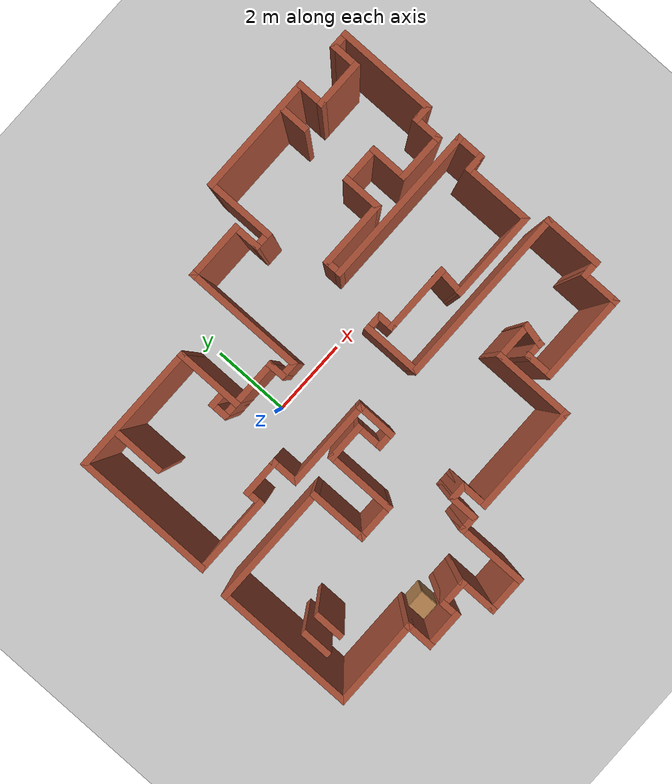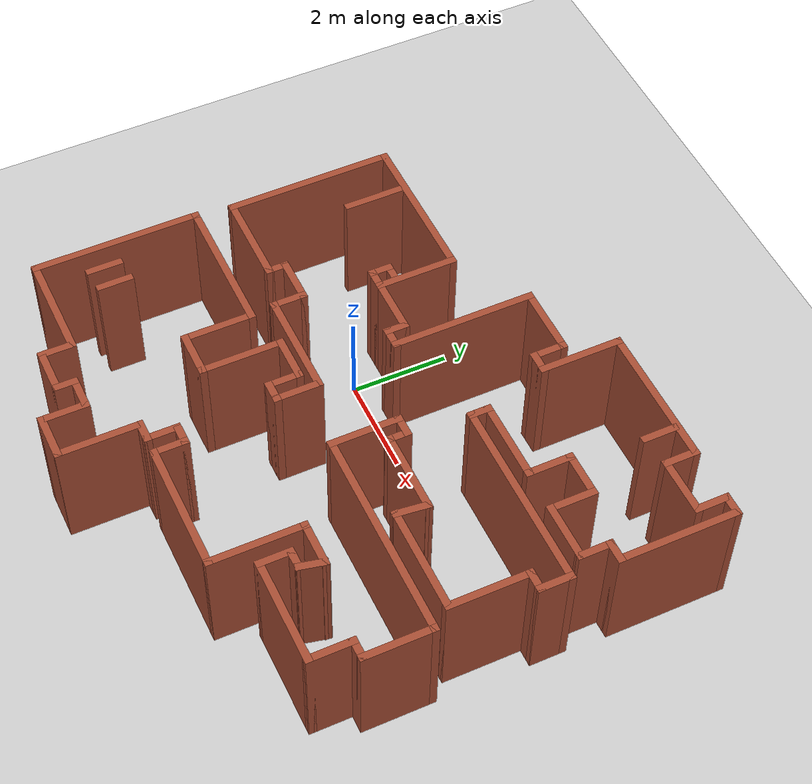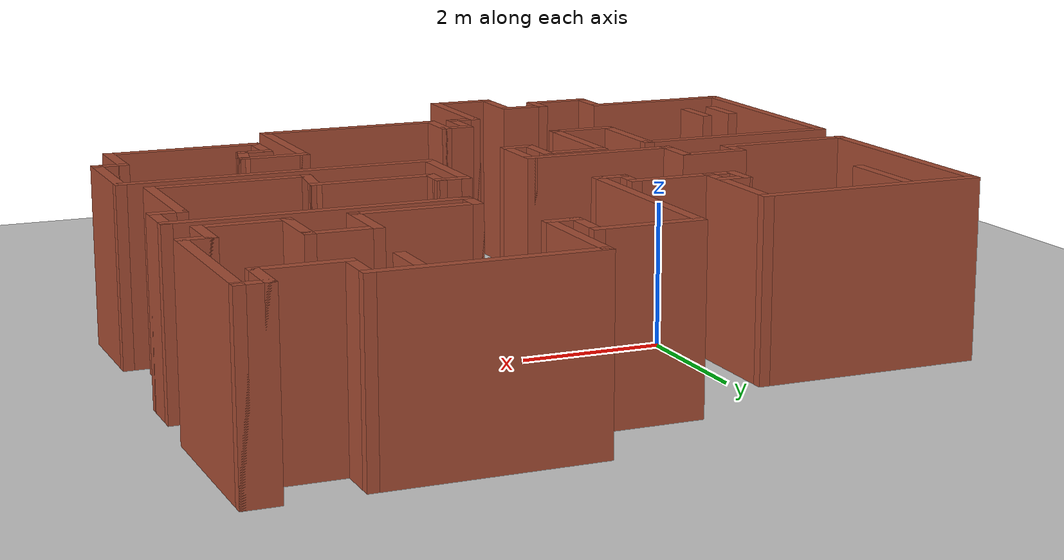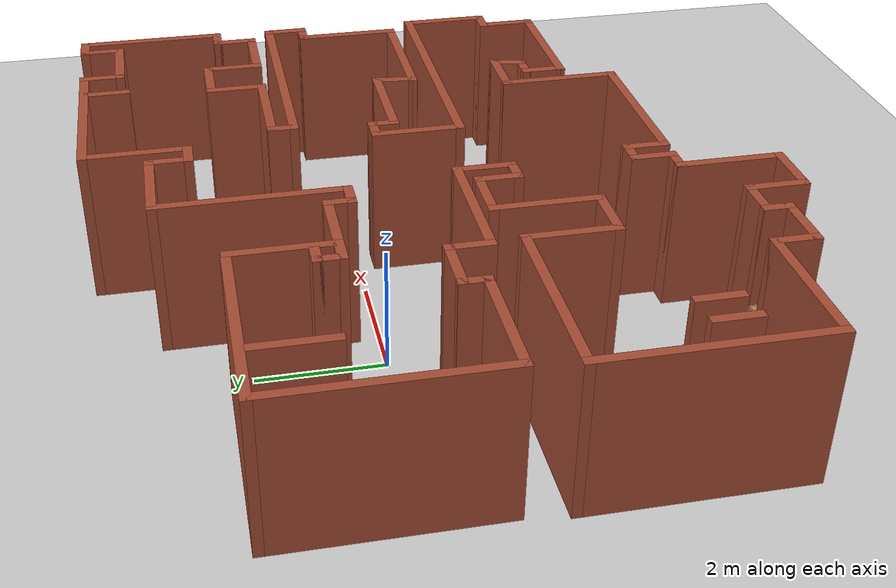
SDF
<sdf version="1.6">
 <world name="default">
  <model name="ground_plane">
   <static>1</static>
   <link name="link">
    <collision name="collision">
     <geometry><plane><normal>0 0 1</normal><size>100 100</size></plane></geometry>
     <surface>
      <contact><collide_bitmask>65535</collide_bitmask></contact>
      <friction><ode><mu>100</mu><mu2>50</mu2></ode></friction>
     </surface>
    </collision>
    <visual name="visual">
     <cast_shadows>0</cast_shadows>
     <geometry><plane><normal>0 0 1</normal><size>100 100</size></plane></geometry>
     <material>
      <script><uri>file://media/materials/scripts/gazebo.material</uri><name>Gazebo/Grey</name></script>
     </material>
    </visual>
   </link>
  </model>
  <model name="map_85">
   <pose>1.75927 -1.02662 0 0 -0 0</pose>
   <link name="Wall_0">
    <collision name="Wall_0_Collision">
     <geometry><box><size>3.25 0.15 2.5</size></box></geometry>
     <pose>0 0 1.25 0 -0 0</pose>
    </collision>
    <visual name="Wall_0_Visual">
     <pose>0 0 1.25 0 -0 0</pose>
     <geometry><box><size>3.25 0.15 2.5</size></box></geometry>
     <material>
      <script><uri>file://media/materials/scripts/gazebo.material</uri><name>Gazebo/Bricks</name></script>
      <ambient>1 1 1 1</ambient>
     </material>
     <meta><layer>0</layer></meta>
    </visual>
    <pose>-3.675 3.3 0 0 -0 3.14159</pose>
   </link>
   <link name="Wall_1">
    <collision name="Wall_1_Collision">
     <geometry><box><size>3.5 0.15 2.5</size></box></geometry>
     <pose>0 0 1.25 0 -0 0</pose>
    </collision>
    <visual name="Wall_1_Visual">
     <pose>0 0 1.25 0 -0 0</pose>
     <geometry><box><size>3.5 0.15 2.5</size></box></geometry>
     <material>
      <script><uri>file://media/materials/scripts/gazebo.material</uri><name>Gazebo/Bricks</name></script>
      <ambient>1 1 1 1</ambient>
     </material>
     <meta><layer>0</layer></meta>
    </visual>
    <pose>-5.225 1.625 0 0 -0 -1.5708</pose>
   </link>
   <link name="Wall_10">
    <collision name="Wall_10_Collision">
     <geometry><box><size>1 0.15 2.5</size></box></geometry>
     <pose>0 0 1.25 0 -0 0</pose>
    </collision>
    <visual name="Wall_10_Visual">
     <pose>0 0 1.25 0 -0 0</pose>
     <geometry><box><size>1 0.15 2.5</size></box></geometry>
     <material>
      <script><uri>file://media/materials/scripts/gazebo.material</uri><name>Gazebo/Bricks</name></script>
      <ambient>1 1 1 1</ambient>
     </material>
     <meta><layer>0</layer></meta>
    </visual>
    <pose>-1.2 -0.55 0 0 -0 3.14159</pose>
   </link>
   <link name="Wall_100">
    <collision name="Wall_100_Collision">
     <geometry><box><size>2.75 0.15 2.5</size></box></geometry>
     <pose>0 0 1.25 0 -0 0</pose>
    </collision>
    <visual name="Wall_100_Visual">
     <pose>0 0 1.25 0 -0 0</pose>
     <geometry><box><size>2.75 0.15 2.5</size></box></geometry>
     <material>
      <script><uri>file://media/materials/scripts/gazebo.material</uri><name>Gazebo/Bricks</name></script>
      <ambient>1 1 1 1</ambient>
     </material>
     <meta><layer>0</layer></meta>
    </visual>
    <pose>1.075 -3.65 0 0 -0 0</pose>
   </link>
   <link name="Wall_103">
    <collision name="Wall_103_Collision">
     <geometry><box><size>2 0.15 2.5</size></box></geometry>
     <pose>0 0 1.25 0 -0 0</pose>
    </collision>
    <visual name="Wall_103_Visual">
     <pose>0 0 1.25 0 -0 0</pose>
     <geometry><box><size>2 0.15 2.5</size></box></geometry>
     <material>
      <script><uri>file://media/materials/scripts/gazebo.material</uri><name>Gazebo/Bricks</name></script>
      <ambient>1 1 1 1</ambient>
     </material>
     <meta><layer>0</layer></meta>
    </visual>
    <pose>2.375 -2.725 0 0 -0 1.5708</pose>
   </link>
   <link name="Wall_105">
    <collision name="Wall_105_Collision">
     <geometry><box><size>1 0.15 2.5</size></box></geometry>
     <pose>0 0 1.25 0 -0 0</pose>
    </collision>
    <visual name="Wall_105_Visual">
     <pose>0 0 1.25 0 -0 0</pose>
     <geometry><box><size>1 0.15 2.5</size></box></geometry>
     <material>
      <script><uri>file://media/materials/scripts/gazebo.material</uri><name>Gazebo/Bricks</name></script>
      <ambient>1 1 1 1</ambient>
     </material>
     <meta><layer>0</layer></meta>
    </visual>
    <pose>2.8 -1.8 0 0 -0 0</pose>
   </link>
   <link name="Wall_106">
    <collision name="Wall_106_Collision">
     <geometry><box><size>0.610977 0.15 2.5</size></box></geometry>
     <pose>0 0 1.25 0 -0 0</pose>
    </collision>
    <visual name="Wall_106_Visual">
     <pose>0 0 1.25 0 -0 0</pose>
     <geometry><box><size>0.610977 0.15 2.5</size></box></geometry>
     <material>
      <script><uri>file://media/materials/scripts/gazebo.material</uri><name>Gazebo/Bricks</name></script>
      <ambient>1 1 1 1</ambient>
     </material>
     <meta><layer>0</layer></meta>
    </visual>
    <pose>3.175 -2.025 0 0 -0 -1.78947</pose>
   </link>
   <link name="Wall_108">
    <collision name="Wall_108_Collision">
     <geometry><box><size>0.75 0.15 2.5</size></box></geometry>
     <pose>0 0 1.25 0 -0 0</pose>
    </collision>
    <visual name="Wall_108_Visual">
     <pose>0 0 1.25 0 -0 0</pose>
     <geometry><box><size>0.75 0.15 2.5</size></box></geometry>
     <material>
      <script><uri>file://media/materials/scripts/gazebo.material</uri><name>Gazebo/Bricks</name></script>
      <ambient>1 1 1 1</ambient>
     </material>
     <meta><layer>0</layer></meta>
    </visual>
    <pose>3.2413 4.87358 0 0 -0 -1.5708</pose>
   </link>
   <link name="Wall_11">
    <collision name="Wall_11_Collision">
     <geometry><box><size>1.75 0.15 2.5</size></box></geometry>
     <pose>0 0 1.25 0 -0 0</pose>
    </collision>
    <visual name="Wall_11_Visual">
     <pose>0 0 1.25 0 -0 0</pose>
     <geometry><box><size>1.75 0.15 2.5</size></box></geometry>
     <material>
      <script><uri>file://media/materials/scripts/gazebo.material</uri><name>Gazebo/Bricks</name></script>
      <ambient>1 1 1 1</ambient>
     </material>
     <meta><layer>0</layer></meta>
    </visual>
    <pose>-1.625 -1.35 0 0 -0 -1.5708</pose>
   </link>
   <link name="Wall_110">
    <collision name="Wall_110_Collision">
     <geometry><box><size>0.75 0.15 2.5</size></box></geometry>
     <pose>0 0 1.25 0 -0 0</pose>
    </collision>
    <visual name="Wall_110_Visual">
     <pose>0 0 1.25 0 -0 0</pose>
     <geometry><box><size>0.75 0.15 2.5</size></box></geometry>
     <material>
      <script><uri>file://media/materials/scripts/gazebo.material</uri><name>Gazebo/Bricks</name></script>
      <ambient>1 1 1 1</ambient>
     </material>
     <meta><layer>0</layer></meta>
    </visual>
    <pose>-4.80815 -2.92144 0 0 -0 -1.5708</pose>
   </link>
   <link name="Wall_112">
    <collision name="Wall_112_Collision">
     <geometry><box><size>0.75 0.15 2.5</size></box></geometry>
     <pose>0 0 1.25 0 -0 0</pose>
    </collision>
    <visual name="Wall_112_Visual">
     <pose>0 0 1.25 0 -0 0</pose>
     <geometry><box><size>0.75 0.15 2.5</size></box></geometry>
     <material>
      <script><uri>file://media/materials/scripts/gazebo.material</uri><name>Gazebo/Bricks</name></script>
      <ambient>1 1 1 1</ambient>
     </material>
     <meta><layer>0</layer></meta>
    </visual>
    <pose>-4.34554 -2.87518 0 0 -0 -1.5708</pose>
   </link>
   <link name="Wall_12">
    <collision name="Wall_12_Collision">
     <geometry><box><size>1 0.15 2.5</size></box></geometry>
     <pose>0 0 1.25 0 -0 0</pose>
    </collision>
    <visual name="Wall_12_Visual">
     <pose>0 0 1.25 0 -0 0</pose>
     <geometry><box><size>1 0.15 2.5</size></box></geometry>
     <material>
      <script><uri>file://media/materials/scripts/gazebo.material</uri><name>Gazebo/Bricks</name></script>
      <ambient>1 1 1 1</ambient>
     </material>
     <meta><layer>0</layer></meta>
    </visual>
    <pose>-2.05 -2.15 0 0 -0 3.14159</pose>
   </link>
   <link name="Wall_13">
    <collision name="Wall_13_Collision">
     <geometry><box><size>1.5 0.15 2.5</size></box></geometry>
     <pose>0 0 1.25 0 -0 0</pose>
    </collision>
    <visual name="Wall_13_Visual">
     <pose>0 0 1.25 0 -0 0</pose>
     <geometry><box><size>1.5 0.15 2.5</size></box></geometry>
     <material>
      <script><uri>file://media/materials/scripts/gazebo.material</uri><name>Gazebo/Bricks</name></script>
      <ambient>1 1 1 1</ambient>
     </material>
     <meta><layer>0</layer></meta>
    </visual>
    <pose>-2.475 -1.475 0 0 -0 1.5708</pose>
   </link>
   <link name="Wall_14">
    <collision name="Wall_14_Collision">
     <geometry><box><size>3 0.15 2.5</size></box></geometry>
     <pose>0 0 1.25 0 -0 0</pose>
    </collision>
    <visual name="Wall_14_Visual">
     <pose>0 0 1.25 0 -0 0</pose>
     <geometry><box><size>3 0.15 2.5</size></box></geometry>
     <material>
      <script><uri>file://media/materials/scripts/gazebo.material</uri><name>Gazebo/Bricks</name></script>
      <ambient>1 1 1 1</ambient>
     </material>
     <meta><layer>0</layer></meta>
    </visual>
    <pose>-3.9 -0.8 0 0 -0 3.14159</pose>
   </link>
   <link name="Wall_15">
    <collision name="Wall_15_Collision">
     <geometry><box><size>3.5 0.15 2.5</size></box></geometry>
     <pose>0 0 1.25 0 -0 0</pose>
    </collision>
    <visual name="Wall_15_Visual">
     <pose>0 0 1.25 0 -0 0</pose>
     <geometry><box><size>3.5 0.15 2.5</size></box></geometry>
     <material>
      <script><uri>file://media/materials/scripts/gazebo.material</uri><name>Gazebo/Bricks</name></script>
      <ambient>1 1 1 1</ambient>
     </material>
     <meta><layer>0</layer></meta>
    </visual>
    <pose>-5.325 -2.475 0 0 -0 -1.5708</pose>
   </link>
   <link name="Wall_16">
    <collision name="Wall_16_Collision">
     <geometry><box><size>2.25 0.15 2.5</size></box></geometry>
     <pose>0 0 1.25 0 -0 0</pose>
    </collision>
    <visual name="Wall_16_Visual">
     <pose>0 0 1.25 0 -0 0</pose>
     <geometry><box><size>2.25 0.15 2.5</size></box></geometry>
     <material>
      <script><uri>file://media/materials/scripts/gazebo.material</uri><name>Gazebo/Bricks</name></script>
      <ambient>1 1 1 1</ambient>
     </material>
     <meta><layer>0</layer></meta>
    </visual>
    <pose>-4.275 -4.15 0 0 -0 0</pose>
   </link>
   <link name="Wall_17">
    <collision name="Wall_17_Collision">
     <geometry><box><size>0.75 0.15 2.5</size></box></geometry>
     <pose>0 0 1.25 0 -0 0</pose>
    </collision>
    <visual name="Wall_17_Visual">
     <pose>0 0 1.25 0 -0 0</pose>
     <geometry><box><size>0.75 0.15 2.5</size></box></geometry>
     <material>
      <script><uri>file://media/materials/scripts/gazebo.material</uri><name>Gazebo/Bricks</name></script>
      <ambient>1 1 1 1</ambient>
     </material>
     <meta><layer>0</layer></meta>
    </visual>
    <pose>-3.225 -4.45 0 0 -0 -1.5708</pose>
   </link>
   <link name="Wall_18">
    <collision name="Wall_18_Collision">
     <geometry><box><size>1 0.15 2.5</size></box></geometry>
     <pose>0 0 1.25 0 -0 0</pose>
    </collision>
    <visual name="Wall_18_Visual">
     <pose>0 0 1.25 0 -0 0</pose>
     <geometry><box><size>1 0.15 2.5</size></box></geometry>
     <material>
      <script><uri>file://media/materials/scripts/gazebo.material</uri><name>Gazebo/Bricks</name></script>
      <ambient>1 1 1 1</ambient>
     </material>
     <meta><layer>0</layer></meta>
    </visual>
    <pose>-2.8 -4.75 0 0 -0 0</pose>
   </link>
   <link name="Wall_19">
    <collision name="Wall_19_Collision">
     <geometry><box><size>0.5 0.15 2.5</size></box></geometry>
     <pose>0 0 1.25 0 -0 0</pose>
    </collision>
    <visual name="Wall_19_Visual">
     <pose>0 0 1.25 0 -0 0</pose>
     <geometry><box><size>0.5 0.15 2.5</size></box></geometry>
     <material>
      <script><uri>file://media/materials/scripts/gazebo.material</uri><name>Gazebo/Bricks</name></script>
      <ambient>1 1 1 1</ambient>
     </material>
     <meta><layer>0</layer></meta>
    </visual>
    <pose>-2.375 -4.575 0 0 -0 1.5708</pose>
   </link>
   <link name="Wall_2">
    <collision name="Wall_2_Collision">
     <geometry><box><size>2 0.15 2.5</size></box></geometry>
     <pose>0 0 1.25 0 -0 0</pose>
    </collision>
    <visual name="Wall_2_Visual">
     <pose>0 0 1.25 0 -0 0</pose>
     <geometry><box><size>2 0.15 2.5</size></box></geometry>
     <material>
      <script><uri>file://media/materials/scripts/gazebo.material</uri><name>Gazebo/Bricks</name></script>
      <ambient>1 1 1 1</ambient>
     </material>
     <meta><layer>0</layer></meta>
    </visual>
    <pose>-4.3 -0.05 0 0 -0 0</pose>
   </link>
   <link name="Wall_20">
    <collision name="Wall_20_Collision">
     <geometry><box><size>0.75 0.15 2.5</size></box></geometry>
     <pose>0 0 1.25 0 -0 0</pose>
    </collision>
    <visual name="Wall_20_Visual">
     <pose>0 0 1.25 0 -0 0</pose>
     <geometry><box><size>0.75 0.15 2.5</size></box></geometry>
     <material>
      <script><uri>file://media/materials/scripts/gazebo.material</uri><name>Gazebo/Bricks</name></script>
      <ambient>1 1 1 1</ambient>
     </material>
     <meta><layer>0</layer></meta>
    </visual>
    <pose>-2.075 -4.4 0 0 -0 0</pose>
   </link>
   <link name="Wall_21">
    <collision name="Wall_21_Collision">
     <geometry><box><size>1 0.15 2.5</size></box></geometry>
     <pose>0 0 1.25 0 -0 0</pose>
    </collision>
    <visual name="Wall_21_Visual">
     <pose>0 0 1.25 0 -0 0</pose>
     <geometry><box><size>1 0.15 2.5</size></box></geometry>
     <material>
      <script><uri>file://media/materials/scripts/gazebo.material</uri><name>Gazebo/Bricks</name></script>
      <ambient>1 1 1 1</ambient>
     </material>
     <meta><layer>0</layer></meta>
    </visual>
    <pose>-1.775 -4.825 0 0 -0 -1.5708</pose>
   </link>
   <link name="Wall_22">
    <collision name="Wall_22_Collision">
     <geometry><box><size>1 0.15 2.5</size></box></geometry>
     <pose>0 0 1.25 0 -0 0</pose>
    </collision>
    <visual name="Wall_22_Visual">
     <pose>0 0 1.25 0 -0 0</pose>
     <geometry><box><size>1 0.15 2.5</size></box></geometry>
     <material>
      <script><uri>file://media/materials/scripts/gazebo.material</uri><name>Gazebo/Bricks</name></script>
      <ambient>1 1 1 1</ambient>
     </material>
     <meta><layer>0</layer></meta>
    </visual>
    <pose>-1.35 -5.25 0 0 -0 0</pose>
   </link>
   <link name="Wall_3">
    <collision name="Wall_3_Collision">
     <geometry><box><size>0.5 0.15 2.5</size></box></geometry>
     <pose>0 0 1.25 0 -0 0</pose>
    </collision>
    <visual name="Wall_3_Visual">
     <pose>0 0 1.25 0 -0 0</pose>
     <geometry><box><size>0.5 0.15 2.5</size></box></geometry>
     <material>
      <script><uri>file://media/materials/scripts/gazebo.material</uri><name>Gazebo/Bricks</name></script>
      <ambient>1 1 1 1</ambient>
     </material>
     <meta><layer>0</layer></meta>
    </visual>
    <pose>-3.375 0.125 0 0 -0 1.5708</pose>
   </link>
   <link name="Wall_30">
    <collision name="Wall_30_Collision">
     <geometry><box><size>0.5 0.15 2.5</size></box></geometry>
     <pose>0 0 1.25 0 -0 0</pose>
    </collision>
    <visual name="Wall_30_Visual">
     <pose>0 0 1.25 0 -0 0</pose>
     <geometry><box><size>0.5 0.15 2.5</size></box></geometry>
     <material>
      <script><uri>file://media/materials/scripts/gazebo.material</uri><name>Gazebo/Bricks</name></script>
      <ambient>1 1 1 1</ambient>
     </material>
     <meta><layer>0</layer></meta>
    </visual>
    <pose>2.95 -2.25 0 0 -0 3.14159</pose>
   </link>
   <link name="Wall_31">
    <collision name="Wall_31_Collision">
     <geometry><box><size>0.75 0.15 2.5</size></box></geometry>
     <pose>0 0 1.25 0 -0 0</pose>
    </collision>
    <visual name="Wall_31_Visual">
     <pose>0 0 1.25 0 -0 0</pose>
     <geometry><box><size>0.75 0.15 2.5</size></box></geometry>
     <material>
      <script><uri>file://media/materials/scripts/gazebo.material</uri><name>Gazebo/Bricks</name></script>
      <ambient>1 1 1 1</ambient>
     </material>
     <meta><layer>0</layer></meta>
    </visual>
    <pose>2.775 -2.55 0 0 -0 -1.5708</pose>
   </link>
   <link name="Wall_32">
    <collision name="Wall_32_Collision">
     <geometry><box><size>2.25 0.15 2.5</size></box></geometry>
     <pose>0 0 1.25 0 -0 0</pose>
    </collision>
    <visual name="Wall_32_Visual">
     <pose>0 0 1.25 0 -0 0</pose>
     <geometry><box><size>2.25 0.15 2.5</size></box></geometry>
     <material>
      <script><uri>file://media/materials/scripts/gazebo.material</uri><name>Gazebo/Bricks</name></script>
      <ambient>1 1 1 1</ambient>
     </material>
     <meta><layer>0</layer></meta>
    </visual>
    <pose>3.825 -2.85 0 0 -0 0</pose>
   </link>
   <link name="Wall_33">
    <collision name="Wall_33_Collision">
     <geometry><box><size>1 0.15 2.5</size></box></geometry>
     <pose>0 0 1.25 0 -0 0</pose>
    </collision>
    <visual name="Wall_33_Visual">
     <pose>0 0 1.25 0 -0 0</pose>
     <geometry><box><size>1 0.15 2.5</size></box></geometry>
     <material>
      <script><uri>file://media/materials/scripts/gazebo.material</uri><name>Gazebo/Bricks</name></script>
      <ambient>1 1 1 1</ambient>
     </material>
     <meta><layer>0</layer></meta>
    </visual>
    <pose>4.875 -2.425 0 0 -0 1.5708</pose>
   </link>
   <link name="Wall_34">
    <collision name="Wall_34_Collision">
     <geometry><box><size>0.5 0.15 2.5</size></box></geometry>
     <pose>0 0 1.25 0 -0 0</pose>
    </collision>
    <visual name="Wall_34_Visual">
     <pose>0 0 1.25 0 -0 0</pose>
     <geometry><box><size>0.5 0.15 2.5</size></box></geometry>
     <material>
      <script><uri>file://media/materials/scripts/gazebo.material</uri><name>Gazebo/Bricks</name></script>
      <ambient>1 1 1 1</ambient>
     </material>
     <meta><layer>0</layer></meta>
    </visual>
    <pose>5.05 -2 0 0 -0 0</pose>
   </link>
   <link name="Wall_35">
    <collision name="Wall_35_Collision">
     <geometry><box><size>1.5 0.15 2.5</size></box></geometry>
     <pose>0 0 1.25 0 -0 0</pose>
    </collision>
    <visual name="Wall_35_Visual">
     <pose>0 0 1.25 0 -0 0</pose>
     <geometry><box><size>1.5 0.15 2.5</size></box></geometry>
     <material>
      <script><uri>file://media/materials/scripts/gazebo.material</uri><name>Gazebo/Bricks</name></script>
      <ambient>1 1 1 1</ambient>
     </material>
     <meta><layer>0</layer></meta>
    </visual>
    <pose>5.225 -1.325 0 0 -0 1.5708</pose>
   </link>
   <link name="Wall_38">
    <collision name="Wall_38_Collision">
     <geometry><box><size>4.43067 0.15 2.5</size></box></geometry>
     <pose>0 0 1.25 0 -0 0</pose>
    </collision>
    <visual name="Wall_38_Visual">
     <pose>0 0 1.25 0 -0 0</pose>
     <geometry><box><size>4.43067 0.15 2.5</size></box></geometry>
     <material>
      <script><uri>file://media/materials/scripts/gazebo.material</uri><name>Gazebo/Bricks</name></script>
      <ambient>1 1 1 1</ambient>
     </material>
     <meta><layer>0</layer></meta>
    </visual>
    <pose>3.0847 -0.65 0 0 -0 3.14159</pose>
   </link>
   <link name="Wall_4">
    <collision name="Wall_4_Collision">
     <geometry><box><size>1 0.15 2.5</size></box></geometry>
     <pose>0 0 1.25 0 -0 0</pose>
    </collision>
    <visual name="Wall_4_Visual">
     <pose>0 0 1.25 0 -0 0</pose>
     <geometry><box><size>1 0.15 2.5</size></box></geometry>
     <material>
      <script><uri>file://media/materials/scripts/gazebo.material</uri><name>Gazebo/Bricks</name></script>
      <ambient>1 1 1 1</ambient>
     </material>
     <meta><layer>0</layer></meta>
    </visual>
    <pose>-2.95 0.3 0 0 -0 0</pose>
   </link>
   <link name="Wall_44">
    <collision name="Wall_44_Collision">
     <geometry><box><size>2.25 0.15 2.5</size></box></geometry>
     <pose>0 0 1.25 0 -0 0</pose>
    </collision>
    <visual name="Wall_44_Visual">
     <pose>0 0 1.25 0 -0 0</pose>
     <geometry><box><size>2.25 0.15 2.5</size></box></geometry>
     <material>
      <script><uri>file://media/materials/scripts/gazebo.material</uri><name>Gazebo/Bricks</name></script>
      <ambient>1 1 1 1</ambient>
     </material>
     <meta><layer>0</layer></meta>
    </visual>
    <pose>3.875 -0.25 0 0 -0 0</pose>
   </link>
   <link name="Wall_45">
    <collision name="Wall_45_Collision">
     <geometry><box><size>1.75 0.15 2.5</size></box></geometry>
     <pose>0 0 1.25 0 -0 0</pose>
    </collision>
    <visual name="Wall_45_Visual">
     <pose>0 0 1.25 0 -0 0</pose>
     <geometry><box><size>1.75 0.15 2.5</size></box></geometry>
     <material>
      <script><uri>file://media/materials/scripts/gazebo.material</uri><name>Gazebo/Bricks</name></script>
      <ambient>1 1 1 1</ambient>
     </material>
     <meta><layer>0</layer></meta>
    </visual>
    <pose>4.925 0.55 0 0 -0 1.5708</pose>
   </link>
   <link name="Wall_46">
    <collision name="Wall_46_Collision">
     <geometry><box><size>0.5 0.15 2.5</size></box></geometry>
     <pose>0 0 1.25 0 -0 0</pose>
    </collision>
    <visual name="Wall_46_Visual">
     <pose>0 0 1.25 0 -0 0</pose>
     <geometry><box><size>0.5 0.15 2.5</size></box></geometry>
     <material>
      <script><uri>file://media/materials/scripts/gazebo.material</uri><name>Gazebo/Bricks</name></script>
      <ambient>1 1 1 1</ambient>
     </material>
     <meta><layer>0</layer></meta>
    </visual>
    <pose>5.1 1.35 0 0 -0 0</pose>
   </link>
   <link name="Wall_47">
    <collision name="Wall_47_Collision">
     <geometry><box><size>0.75 0.15 2.5</size></box></geometry>
     <pose>0 0 1.25 0 -0 0</pose>
    </collision>
    <visual name="Wall_47_Visual">
     <pose>0 0 1.25 0 -0 0</pose>
     <geometry><box><size>0.75 0.15 2.5</size></box></geometry>
     <material>
      <script><uri>file://media/materials/scripts/gazebo.material</uri><name>Gazebo/Bricks</name></script>
      <ambient>1 1 1 1</ambient>
     </material>
     <meta><layer>0</layer></meta>
    </visual>
    <pose>5.275 1.65 0 0 -0 1.5708</pose>
   </link>
   <link name="Wall_48">
    <collision name="Wall_48_Collision">
     <geometry><box><size>4 0.15 2.5</size></box></geometry>
     <pose>0 0 1.25 0 -0 0</pose>
    </collision>
    <visual name="Wall_48_Visual">
     <pose>0 0 1.25 0 -0 0</pose>
     <geometry><box><size>4 0.15 2.5</size></box></geometry>
     <material>
      <script><uri>file://media/materials/scripts/gazebo.material</uri><name>Gazebo/Bricks</name></script>
      <ambient>1 1 1 1</ambient>
     </material>
     <meta><layer>0</layer></meta>
    </visual>
    <pose>3.35 1.95 0 0 -0 3.14159</pose>
   </link>
   <link name="Wall_49">
    <collision name="Wall_49_Collision">
     <geometry><box><size>0.5 0.15 2.5</size></box></geometry>
     <pose>0 0 1.25 0 -0 0</pose>
    </collision>
    <visual name="Wall_49_Visual">
     <pose>0 0 1.25 0 -0 0</pose>
     <geometry><box><size>0.5 0.15 2.5</size></box></geometry>
     <material>
      <script><uri>file://media/materials/scripts/gazebo.material</uri><name>Gazebo/Bricks</name></script>
      <ambient>1 1 1 1</ambient>
     </material>
     <meta><layer>0</layer></meta>
    </visual>
    <pose>1.425 2.125 0 0 -0 1.5708</pose>
   </link>
   <link name="Wall_5">
    <collision name="Wall_5_Collision">
     <geometry><box><size>0.75 0.15 2.5</size></box></geometry>
     <pose>0 0 1.25 0 -0 0</pose>
    </collision>
    <visual name="Wall_5_Visual">
     <pose>0 0 1.25 0 -0 0</pose>
     <geometry><box><size>0.75 0.15 2.5</size></box></geometry>
     <material>
      <script><uri>file://media/materials/scripts/gazebo.material</uri><name>Gazebo/Bricks</name></script>
      <ambient>1 1 1 1</ambient>
     </material>
     <meta><layer>0</layer></meta>
    </visual>
    <pose>-2.525 -0 0 0 -0 -1.5708</pose>
   </link>
   <link name="Wall_50">
    <collision name="Wall_50_Collision">
     <geometry><box><size>1.75 0.15 2.5</size></box></geometry>
     <pose>0 0 1.25 0 -0 0</pose>
    </collision>
    <visual name="Wall_50_Visual">
     <pose>0 0 1.25 0 -0 0</pose>
     <geometry><box><size>1.75 0.15 2.5</size></box></geometry>
     <material>
      <script><uri>file://media/materials/scripts/gazebo.material</uri><name>Gazebo/Bricks</name></script>
      <ambient>1 1 1 1</ambient>
     </material>
     <meta><layer>0</layer></meta>
    </visual>
    <pose>2.225 2.3 0 0 -0 0</pose>
   </link>
   <link name="Wall_51">
    <collision name="Wall_51_Collision">
     <geometry><box><size>1 0.15 2.5</size></box></geometry>
     <pose>0 0 1.25 0 -0 0</pose>
    </collision>
    <visual name="Wall_51_Visual">
     <pose>0 0 1.25 0 -0 0</pose>
     <geometry><box><size>1 0.15 2.5</size></box></geometry>
     <material>
      <script><uri>file://media/materials/scripts/gazebo.material</uri><name>Gazebo/Bricks</name></script>
      <ambient>1 1 1 1</ambient>
     </material>
     <meta><layer>0</layer></meta>
    </visual>
    <pose>3.025 2.725 0 0 -0 1.5708</pose>
   </link>
   <link name="Wall_52">
    <collision name="Wall_52_Collision">
     <geometry><box><size>1 0.15 2.5</size></box></geometry>
     <pose>0 0 1.25 0 -0 0</pose>
    </collision>
    <visual name="Wall_52_Visual">
     <pose>0 0 1.25 0 -0 0</pose>
     <geometry><box><size>1 0.15 2.5</size></box></geometry>
     <material>
      <script><uri>file://media/materials/scripts/gazebo.material</uri><name>Gazebo/Bricks</name></script>
      <ambient>1 1 1 1</ambient>
     </material>
     <meta><layer>0</layer></meta>
    </visual>
    <pose>3.45 3.15 0 0 -0 0</pose>
   </link>
   <link name="Wall_53">
    <collision name="Wall_53_Collision">
     <geometry><box><size>1 0.15 2.5</size></box></geometry>
     <pose>0 0 1.25 0 -0 0</pose>
    </collision>
    <visual name="Wall_53_Visual">
     <pose>0 0 1.25 0 -0 0</pose>
     <geometry><box><size>1 0.15 2.5</size></box></geometry>
     <material>
      <script><uri>file://media/materials/scripts/gazebo.material</uri><name>Gazebo/Bricks</name></script>
      <ambient>1 1 1 1</ambient>
     </material>
     <meta><layer>0</layer></meta>
    </visual>
    <pose>3.875 2.725 0 0 -0 -1.5708</pose>
   </link>
   <link name="Wall_54">
    <collision name="Wall_54_Collision">
     <geometry><box><size>1.25 0.15 2.5</size></box></geometry>
     <pose>0 0 1.25 0 -0 0</pose>
    </collision>
    <visual name="Wall_54_Visual">
     <pose>0 0 1.25 0 -0 0</pose>
     <geometry><box><size>1.25 0.15 2.5</size></box></geometry>
     <material>
      <script><uri>file://media/materials/scripts/gazebo.material</uri><name>Gazebo/Bricks</name></script>
      <ambient>1 1 1 1</ambient>
     </material>
     <meta><layer>0</layer></meta>
    </visual>
    <pose>4.425 2.3 0 0 -0 0</pose>
   </link>
   <link name="Wall_55">
    <collision name="Wall_55_Collision">
     <geometry><box><size>0.75 0.15 2.5</size></box></geometry>
     <pose>0 0 1.25 0 -0 0</pose>
    </collision>
    <visual name="Wall_55_Visual">
     <pose>0 0 1.25 0 -0 0</pose>
     <geometry><box><size>0.75 0.15 2.5</size></box></geometry>
     <material>
      <script><uri>file://media/materials/scripts/gazebo.material</uri><name>Gazebo/Bricks</name></script>
      <ambient>1 1 1 1</ambient>
     </material>
     <meta><layer>0</layer></meta>
    </visual>
    <pose>4.975 2.6 0 0 -0 1.5708</pose>
   </link>
   <link name="Wall_56">
    <collision name="Wall_56_Collision">
     <geometry><box><size>0.5 0.15 2.5</size></box></geometry>
     <pose>0 0 1.25 0 -0 0</pose>
    </collision>
    <visual name="Wall_56_Visual">
     <pose>0 0 1.25 0 -0 0</pose>
     <geometry><box><size>0.5 0.15 2.5</size></box></geometry>
     <material>
      <script><uri>file://media/materials/scripts/gazebo.material</uri><name>Gazebo/Bricks</name></script>
      <ambient>1 1 1 1</ambient>
     </material>
     <meta><layer>0</layer></meta>
    </visual>
    <pose>5.15 2.9 0 0 -0 0</pose>
   </link>
   <link name="Wall_57">
    <collision name="Wall_57_Collision">
     <geometry><box><size>2.5 0.15 2.5</size></box></geometry>
     <pose>0 0 1.25 0 -0 0</pose>
    </collision>
    <visual name="Wall_57_Visual">
     <pose>0 0 1.25 0 -0 0</pose>
     <geometry><box><size>2.5 0.15 2.5</size></box></geometry>
     <material>
      <script><uri>file://media/materials/scripts/gazebo.material</uri><name>Gazebo/Bricks</name></script>
      <ambient>1 1 1 1</ambient>
     </material>
     <meta><layer>0</layer></meta>
    </visual>
    <pose>5.325 4.075 0 0 -0 1.5708</pose>
   </link>
   <link name="Wall_58">
    <collision name="Wall_58_Collision">
     <geometry><box><size>0.5 0.15 2.5</size></box></geometry>
     <pose>0 0 1.25 0 -0 0</pose>
    </collision>
    <visual name="Wall_58_Visual">
     <pose>0 0 1.25 0 -0 0</pose>
     <geometry><box><size>0.5 0.15 2.5</size></box></geometry>
     <material>
      <script><uri>file://media/materials/scripts/gazebo.material</uri><name>Gazebo/Bricks</name></script>
      <ambient>1 1 1 1</ambient>
     </material>
     <meta><layer>0</layer></meta>
    </visual>
    <pose>5.15 5.25 0 0 -0 3.14159</pose>
   </link>
   <link name="Wall_59">
    <collision name="Wall_59_Collision">
     <geometry><box><size>0.75 0.15 2.5</size></box></geometry>
     <pose>0 0 1.25 0 -0 0</pose>
    </collision>
    <visual name="Wall_59_Visual">
     <pose>0 0 1.25 0 -0 0</pose>
     <geometry><box><size>0.75 0.15 2.5</size></box></geometry>
     <material>
      <script><uri>file://media/materials/scripts/gazebo.material</uri><name>Gazebo/Bricks</name></script>
      <ambient>1 1 1 1</ambient>
     </material>
     <meta><layer>0</layer></meta>
    </visual>
    <pose>4.975 4.95 0 0 -0 -1.5708</pose>
   </link>
   <link name="Wall_6">
    <collision name="Wall_6_Collision">
     <geometry><box><size>2.25 0.15 2.5</size></box></geometry>
     <pose>0 0 1.25 0 -0 0</pose>
    </collision>
    <visual name="Wall_6_Visual">
     <pose>0 0 1.25 0 -0 0</pose>
     <geometry><box><size>2.25 0.15 2.5</size></box></geometry>
     <material>
      <script><uri>file://media/materials/scripts/gazebo.material</uri><name>Gazebo/Bricks</name></script>
      <ambient>1 1 1 1</ambient>
     </material>
     <meta><layer>0</layer></meta>
    </visual>
    <pose>-1.475 -0.3 0 0 -0 0</pose>
   </link>
   <link name="Wall_60">
    <collision name="Wall_60_Collision">
     <geometry><box><size>1.25 0.15 2.5</size></box></geometry>
     <pose>0 0 1.25 0 -0 0</pose>
    </collision>
    <visual name="Wall_60_Visual">
     <pose>0 0 1.25 0 -0 0</pose>
     <geometry><box><size>1.25 0.15 2.5</size></box></geometry>
     <material>
      <script><uri>file://media/materials/scripts/gazebo.material</uri><name>Gazebo/Bricks</name></script>
      <ambient>1 1 1 1</ambient>
     </material>
     <meta><layer>0</layer></meta>
    </visual>
    <pose>4.425 4.65 0 0 -0 3.14159</pose>
   </link>
   <link name="Wall_61">
    <collision name="Wall_61_Collision">
     <geometry><box><size>0.75 0.15 2.5</size></box></geometry>
     <pose>0 0 1.25 0 -0 0</pose>
    </collision>
    <visual name="Wall_61_Visual">
     <pose>0 0 1.25 0 -0 0</pose>
     <geometry><box><size>0.75 0.15 2.5</size></box></geometry>
     <material>
      <script><uri>file://media/materials/scripts/gazebo.material</uri><name>Gazebo/Bricks</name></script>
      <ambient>1 1 1 1</ambient>
     </material>
     <meta><layer>0</layer></meta>
    </visual>
    <pose>3.875 4.95 0 0 -0 1.5708</pose>
   </link>
   <link name="Wall_62">
    <collision name="Wall_62_Collision">
     <geometry><box><size>3 0.15 2.5</size></box></geometry>
     <pose>0 0 1.25 0 -0 0</pose>
    </collision>
    <visual name="Wall_62_Visual">
     <pose>0 0 1.25 0 -0 0</pose>
     <geometry><box><size>3 0.15 2.5</size></box></geometry>
     <material>
      <script><uri>file://media/materials/scripts/gazebo.material</uri><name>Gazebo/Bricks</name></script>
      <ambient>1 1 1 1</ambient>
     </material>
     <meta><layer>0</layer></meta>
    </visual>
    <pose>2.45 5.25 0 0 -0 3.14159</pose>
   </link>
   <link name="Wall_63">
    <collision name="Wall_63_Collision">
     <geometry><box><size>1.75 0.15 2.5</size></box></geometry>
     <pose>0 0 1.25 0 -0 0</pose>
    </collision>
    <visual name="Wall_63_Visual">
     <pose>0 0 1.25 0 -0 0</pose>
     <geometry><box><size>1.75 0.15 2.5</size></box></geometry>
     <material>
      <script><uri>file://media/materials/scripts/gazebo.material</uri><name>Gazebo/Bricks</name></script>
      <ambient>1 1 1 1</ambient>
     </material>
     <meta><layer>0</layer></meta>
    </visual>
    <pose>1.025 4.45 0 0 -0 -1.5708</pose>
   </link>
   <link name="Wall_64">
    <collision name="Wall_64_Collision">
     <geometry><box><size>0.5 0.15 2.5</size></box></geometry>
     <pose>0 0 1.25 0 -0 0</pose>
    </collision>
    <visual name="Wall_64_Visual">
     <pose>0 0 1.25 0 -0 0</pose>
     <geometry><box><size>0.5 0.15 2.5</size></box></geometry>
     <material>
      <script><uri>file://media/materials/scripts/gazebo.material</uri><name>Gazebo/Bricks</name></script>
      <ambient>1 1 1 1</ambient>
     </material>
     <meta><layer>0</layer></meta>
    </visual>
    <pose>0.85 3.65 0 0 -0 3.14159</pose>
   </link>
   <link name="Wall_65">
    <collision name="Wall_65_Collision">
     <geometry><box><size>0.75 0.15 2.5</size></box></geometry>
     <pose>0 0 1.25 0 -0 0</pose>
    </collision>
    <visual name="Wall_65_Visual">
     <pose>0 0 1.25 0 -0 0</pose>
     <geometry><box><size>0.75 0.15 2.5</size></box></geometry>
     <material>
      <script><uri>file://media/materials/scripts/gazebo.material</uri><name>Gazebo/Bricks</name></script>
      <ambient>1 1 1 1</ambient>
     </material>
     <meta><layer>0</layer></meta>
    </visual>
    <pose>0.675 3.95 0 0 -0 1.5708</pose>
   </link>
   <link name="Wall_68">
    <collision name="Wall_68_Collision">
     <geometry><box><size>1.5 0.15 2.5</size></box></geometry>
     <pose>0 0 1.25 0 -0 0</pose>
    </collision>
    <visual name="Wall_68_Visual">
     <pose>0 0 1.25 0 -0 0</pose>
     <geometry><box><size>1.5 0.15 2.5</size></box></geometry>
     <material>
      <script><uri>file://media/materials/scripts/gazebo.material</uri><name>Gazebo/Bricks</name></script>
      <ambient>1 1 1 1</ambient>
     </material>
     <meta><layer>0</layer></meta>
    </visual>
    <pose>0 4.25 0 0 -0 3.14159</pose>
   </link>
   <link name="Wall_69">
    <collision name="Wall_69_Collision">
     <geometry><box><size>3 0.15 2.5</size></box></geometry>
     <pose>0 0 1.25 0 -0 0</pose>
    </collision>
    <visual name="Wall_69_Visual">
     <pose>0 0 1.25 0 -0 0</pose>
     <geometry><box><size>3 0.15 2.5</size></box></geometry>
     <material>
      <script><uri>file://media/materials/scripts/gazebo.material</uri><name>Gazebo/Bricks</name></script>
      <ambient>1 1 1 1</ambient>
     </material>
     <meta><layer>0</layer></meta>
    </visual>
    <pose>-0.675 2.825 0 0 -0 -1.5708</pose>
   </link>
   <link name="Wall_7">
    <collision name="Wall_7_Collision">
     <geometry><box><size>1 0.15 2.5</size></box></geometry>
     <pose>0 0 1.25 0 -0 0</pose>
    </collision>
    <visual name="Wall_7_Visual">
     <pose>0 0 1.25 0 -0 0</pose>
     <geometry><box><size>1 0.15 2.5</size></box></geometry>
     <material>
      <script><uri>file://media/materials/scripts/gazebo.material</uri><name>Gazebo/Bricks</name></script>
      <ambient>1 1 1 1</ambient>
     </material>
     <meta><layer>0</layer></meta>
    </visual>
    <pose>-0.425 -0.725 0 0 -0 -1.5708</pose>
   </link>
   <link name="Wall_72">
    <collision name="Wall_72_Collision">
     <geometry><box><size>0.5 0.15 2.5</size></box></geometry>
     <pose>0 0 1.25 0 -0 0</pose>
    </collision>
    <visual name="Wall_72_Visual">
     <pose>0 0 1.25 0 -0 0</pose>
     <geometry><box><size>0.5 0.15 2.5</size></box></geometry>
     <material>
      <script><uri>file://media/materials/scripts/gazebo.material</uri><name>Gazebo/Bricks</name></script>
      <ambient>1 1 1 1</ambient>
     </material>
     <meta><layer>0</layer></meta>
    </visual>
    <pose>-0.85 1.4 0 0 -0 3.14159</pose>
   </link>
   <link name="Wall_73">
    <collision name="Wall_73_Collision">
     <geometry><box><size>0.5 0.15 2.5</size></box></geometry>
     <pose>0 0 1.25 0 -0 0</pose>
    </collision>
    <visual name="Wall_73_Visual">
     <pose>0 0 1.25 0 -0 0</pose>
     <geometry><box><size>0.5 0.15 2.5</size></box></geometry>
     <material>
      <script><uri>file://media/materials/scripts/gazebo.material</uri><name>Gazebo/Bricks</name></script>
      <ambient>1 1 1 1</ambient>
     </material>
     <meta><layer>0</layer></meta>
    </visual>
    <pose>-1.025 1.575 0 0 -0 1.5708</pose>
   </link>
   <link name="Wall_74">
    <collision name="Wall_74_Collision">
     <geometry><box><size>1.25 0.15 2.5</size></box></geometry>
     <pose>0 0 1.25 0 -0 0</pose>
    </collision>
    <visual name="Wall_74_Visual">
     <pose>0 0 1.25 0 -0 0</pose>
     <geometry><box><size>1.25 0.15 2.5</size></box></geometry>
     <material>
      <script><uri>file://media/materials/scripts/gazebo.material</uri><name>Gazebo/Bricks</name></script>
      <ambient>1 1 1 1</ambient>
     </material>
     <meta><layer>0</layer></meta>
    </visual>
    <pose>-1.575 1.75 0 0 -0 3.14159</pose>
   </link>
   <link name="Wall_75">
    <collision name="Wall_75_Collision">
     <geometry><box><size>1.7 0.15 2.5</size></box></geometry>
     <pose>0 0 1.25 0 -0 0</pose>
    </collision>
    <visual name="Wall_75_Visual">
     <pose>0 0 1.25 0 -0 0</pose>
     <geometry><box><size>1.7 0.15 2.5</size></box></geometry>
     <material>
      <script><uri>file://media/materials/scripts/gazebo.material</uri><name>Gazebo/Bricks</name></script>
      <ambient>1 1 1 1</ambient>
     </material>
     <meta><layer>0</layer></meta>
    </visual>
    <pose>-2.125 2.525 0 0 -0 1.5708</pose>
   </link>
   <link name="Wall_8">
    <collision name="Wall_8_Collision">
     <geometry><box><size>0.5 0.15 2.5</size></box></geometry>
     <pose>0 0 1.25 0 -0 0</pose>
    </collision>
    <visual name="Wall_8_Visual">
     <pose>0 0 1.25 0 -0 0</pose>
     <geometry><box><size>0.5 0.15 2.5</size></box></geometry>
     <material>
      <script><uri>file://media/materials/scripts/gazebo.material</uri><name>Gazebo/Bricks</name></script>
      <ambient>1 1 1 1</ambient>
     </material>
     <meta><layer>0</layer></meta>
    </visual>
    <pose>-0.6 -1.15 0 0 -0 3.14159</pose>
   </link>
   <link name="Wall_80">
    <collision name="Wall_80_Collision">
     <geometry><box><size>0.5 0.15 2.5</size></box></geometry>
     <pose>0 0 1.25 0 -0 0</pose>
    </collision>
    <visual name="Wall_80_Visual">
     <pose>0 0 1.25 0 -0 0</pose>
     <geometry><box><size>0.5 0.15 2.5</size></box></geometry>
     <material>
      <script><uri>file://media/materials/scripts/gazebo.material</uri><name>Gazebo/Bricks</name></script>
      <ambient>1 1 1 1</ambient>
     </material>
     <meta><layer>0</layer></meta>
    </visual>
    <pose>-2.3 1.75 0 0 -0 3.14159</pose>
   </link>
   <link name="Wall_81">
    <collision name="Wall_81_Collision">
     <geometry><box><size>0.5 0.15 2.5</size></box></geometry>
     <pose>0 0 1.25 0 -0 0</pose>
    </collision>
    <visual name="Wall_81_Visual">
     <pose>0 0 1.25 0 -0 0</pose>
     <geometry><box><size>0.5 0.15 2.5</size></box></geometry>
     <material>
      <script><uri>file://media/materials/scripts/gazebo.material</uri><name>Gazebo/Bricks</name></script>
      <ambient>1 1 1 1</ambient>
     </material>
     <meta><layer>0</layer></meta>
    </visual>
    <pose>-2.475 1.925 0 0 -0 1.5708</pose>
   </link>
   <link name="Wall_82">
    <collision name="Wall_82_Collision">
     <geometry><box><size>0.5 0.15 2.5</size></box></geometry>
     <pose>0 0 1.25 0 -0 0</pose>
    </collision>
    <visual name="Wall_82_Visual">
     <pose>0 0 1.25 0 -0 0</pose>
     <geometry><box><size>0.5 0.15 2.5</size></box></geometry>
     <material>
      <script><uri>file://media/materials/scripts/gazebo.material</uri><name>Gazebo/Bricks</name></script>
      <ambient>1 1 1 1</ambient>
     </material>
     <meta><layer>0</layer></meta>
    </visual>
    <pose>-2.3 2.1 0 0 -0 0</pose>
   </link>
   <link name="Wall_84">
    <collision name="Wall_84_Collision">
     <geometry><box><size>1.25 0.15 2.5</size></box></geometry>
     <pose>0 0 1.25 0 -0 0</pose>
    </collision>
    <visual name="Wall_84_Visual">
     <pose>0 0 1.25 0 -0 0</pose>
     <geometry><box><size>1.25 0.15 2.5</size></box></geometry>
     <material>
      <script><uri>file://media/materials/scripts/gazebo.material</uri><name>Gazebo/Bricks</name></script>
      <ambient>1 1 1 1</ambient>
     </material>
     <meta><layer>0</layer></meta>
    </visual>
    <pose>-4.27615 2.61122 0 0 -0 -1.5708</pose>
   </link>
   <link name="Wall_88">
    <collision name="Wall_88_Collision">
     <geometry><box><size>1.5 0.15 2.5</size></box></geometry>
     <pose>0 0 1.25 0 -0 0</pose>
    </collision>
    <visual name="Wall_88_Visual">
     <pose>0 0 1.25 0 -0 0</pose>
     <geometry><box><size>1.5 0.15 2.5</size></box></geometry>
     <material>
      <script><uri>file://media/materials/scripts/gazebo.material</uri><name>Gazebo/Bricks</name></script>
      <ambient>1 1 1 1</ambient>
     </material>
     <meta><layer>0</layer></meta>
    </visual>
    <pose>0.944392 0.025 0 0 -0 1.5708</pose>
   </link>
   <link name="Wall_89">
    <collision name="Wall_89_Collision">
     <geometry><box><size>0.5 0.15 2.5</size></box></geometry>
     <pose>0 0 1.25 0 -0 0</pose>
    </collision>
    <visual name="Wall_89_Visual">
     <pose>0 0 1.25 0 -0 0</pose>
     <geometry><box><size>0.5 0.15 2.5</size></box></geometry>
     <material>
      <script><uri>file://media/materials/scripts/gazebo.material</uri><name>Gazebo/Bricks</name></script>
      <ambient>1 1 1 1</ambient>
     </material>
     <meta><layer>0</layer></meta>
    </visual>
    <pose>1.11939 0.7 0 0 -0 0</pose>
   </link>
   <link name="Wall_9">
    <collision name="Wall_9_Collision">
     <geometry><box><size>0.75 0.15 2.5</size></box></geometry>
     <pose>0 0 1.25 0 -0 0</pose>
    </collision>
    <visual name="Wall_9_Visual">
     <pose>0 0 1.25 0 -0 0</pose>
     <geometry><box><size>0.75 0.15 2.5</size></box></geometry>
     <material>
      <script><uri>file://media/materials/scripts/gazebo.material</uri><name>Gazebo/Bricks</name></script>
      <ambient>1 1 1 1</ambient>
     </material>
     <meta><layer>0</layer></meta>
    </visual>
    <pose>-0.775 -0.85 0 0 -0 1.5708</pose>
   </link>
   <link name="Wall_90">
    <collision name="Wall_90_Collision">
     <geometry><box><size>0.5 0.15 2.5</size></box></geometry>
     <pose>0 0 1.25 0 -0 0</pose>
    </collision>
    <visual name="Wall_90_Visual">
     <pose>0 0 1.25 0 -0 0</pose>
     <geometry><box><size>0.5 0.15 2.5</size></box></geometry>
     <material>
      <script><uri>file://media/materials/scripts/gazebo.material</uri><name>Gazebo/Bricks</name></script>
      <ambient>1 1 1 1</ambient>
     </material>
     <meta><layer>0</layer></meta>
    </visual>
    <pose>1.29439 0.525 0 0 -0 -1.5708</pose>
   </link>
   <link name="Wall_92">
    <collision name="Wall_92_Collision">
     <geometry><box><size>1.75 0.15 2.5</size></box></geometry>
     <pose>0 0 1.25 0 -0 0</pose>
    </collision>
    <visual name="Wall_92_Visual">
     <pose>0 0 1.25 0 -0 0</pose>
     <geometry><box><size>1.75 0.15 2.5</size></box></geometry>
     <material>
      <script><uri>file://media/materials/scripts/gazebo.material</uri><name>Gazebo/Bricks</name></script>
      <ambient>1 1 1 1</ambient>
     </material>
     <meta><layer>0</layer></meta>
    </visual>
    <pose>2.09439 0.35 0 0 -0 0</pose>
   </link>
   <link name="Wall_93">
    <collision name="Wall_93_Collision">
     <geometry><box><size>0.753999 0.15 2.5</size></box></geometry>
     <pose>0 0 1.25 0 -0 0</pose>
    </collision>
    <visual name="Wall_93_Visual">
     <pose>0 0 1.25 0 -0 0</pose>
     <geometry><box><size>0.753999 0.15 2.5</size></box></geometry>
     <material>
      <script><uri>file://media/materials/scripts/gazebo.material</uri><name>Gazebo/Bricks</name></script>
      <ambient>1 1 1 1</ambient>
     </material>
     <meta><layer>0</layer></meta>
    </visual>
    <pose>2.8597 0.05 0 0 -0 -1.68594</pose>
   </link>
   <link name="Wall_95">
    <collision name="Wall_95_Collision">
     <geometry><box><size>1.75 0.15 2.5</size></box></geometry>
     <pose>0 0 1.25 0 -0 0</pose>
    </collision>
    <visual name="Wall_95_Visual">
     <pose>0 0 1.25 0 -0 0</pose>
     <geometry><box><size>1.75 0.15 2.5</size></box></geometry>
     <material>
      <script><uri>file://media/materials/scripts/gazebo.material</uri><name>Gazebo/Bricks</name></script>
      <ambient>1 1 1 1</ambient>
     </material>
     <meta><layer>0</layer></meta>
    </visual>
    <pose>-0.925 -4.45 0 0 -0 1.5708</pose>
   </link>
   <link name="Wall_96">
    <collision name="Wall_96_Collision">
     <geometry><box><size>0.5 0.15 2.5</size></box></geometry>
     <pose>0 0 1.25 0 -0 0</pose>
    </collision>
    <visual name="Wall_96_Visual">
     <pose>0 0 1.25 0 -0 0</pose>
     <geometry><box><size>0.5 0.15 2.5</size></box></geometry>
     <material>
      <script><uri>file://media/materials/scripts/gazebo.material</uri><name>Gazebo/Bricks</name></script>
      <ambient>1 1 1 1</ambient>
     </material>
     <meta><layer>0</layer></meta>
    </visual>
    <pose>-0.75 -3.65 0 0 -0 0</pose>
   </link>
   <link name="Wall_97">
    <collision name="Wall_97_Collision">
     <geometry><box><size>0.75 0.15 2.5</size></box></geometry>
     <pose>0 0 1.25 0 -0 0</pose>
    </collision>
    <visual name="Wall_97_Visual">
     <pose>0 0 1.25 0 -0 0</pose>
     <geometry><box><size>0.75 0.15 2.5</size></box></geometry>
     <material>
      <script><uri>file://media/materials/scripts/gazebo.material</uri><name>Gazebo/Bricks</name></script>
      <ambient>1 1 1 1</ambient>
     </material>
     <meta><layer>0</layer></meta>
    </visual>
    <pose>-0.575 -3.35 0 0 -0 1.5708</pose>
   </link>
   <link name="Wall_98">
    <collision name="Wall_98_Collision">
     <geometry><box><size>0.5 0.15 2.5</size></box></geometry>
     <pose>0 0 1.25 0 -0 0</pose>
    </collision>
    <visual name="Wall_98_Visual">
     <pose>0 0 1.25 0 -0 0</pose>
     <geometry><box><size>0.5 0.15 2.5</size></box></geometry>
     <material>
      <script><uri>file://media/materials/scripts/gazebo.material</uri><name>Gazebo/Bricks</name></script>
      <ambient>1 1 1 1</ambient>
     </material>
     <meta><layer>0</layer></meta>
    </visual>
    <pose>-0.4 -3.05 0 0 -0 0</pose>
   </link>
   <link name="Wall_99">
    <collision name="Wall_99_Collision">
     <geometry><box><size>0.75 0.15 2.5</size></box></geometry>
     <pose>0 0 1.25 0 -0 0</pose>
    </collision>
    <visual name="Wall_99_Visual">
     <pose>0 0 1.25 0 -0 0</pose>
     <geometry><box><size>0.75 0.15 2.5</size></box></geometry>
     <material>
      <script><uri>file://media/materials/scripts/gazebo.material</uri><name>Gazebo/Bricks</name></script>
      <ambient>1 1 1 1</ambient>
     </material>
     <meta><layer>0</layer></meta>
    </visual>
    <pose>-0.225 -3.35 0 0 -0 -1.5708</pose>
   </link>
   <static>1</static>
  </model>
  <model name="cabinet">
   <static>1</static>
   <link name="cabinet_bottom_plate">
    <inertial>
     <pose>0 0 -1 0 -0 0</pose>
     <inertia><ixx>2.05</ixx><ixy>0</ixy><ixz>0</ixz><iyy>2.05</iyy><iyz>0</iyz><izz>2.05</izz></inertia>
     <mass>25</mass>
    </inertial>
    <collision name="cabinet_bottom_plate_geom">
     <pose>0 0 0.01 0 -0 0</pose>
     <geometry><box><size>0.45 0.45 0.02</size></box></geometry>
    </collision>
    <visual name="cabinet_bottom_plate_geom_visual">
     <pose>0 0 0.01 0 -0 0</pose>
     <geometry><box><size>0.45 0.45 0.02</size></box></geometry>
     <material>
      <script><uri>file://media/materials/scripts/gazebo.material</uri><name>Gazebo/Wood</name></script>
     </material>
    </visual>
    <collision name="cabinet_bottom_plate_geom_cabinet_back_plate">
     <pose>0.235 0 0.51 0 -0 0</pose>
     <geometry><box><size>0.02 0.45 1.02</size></box></geometry>
    </collision>
    <visual name="cabinet_bottom_plate_geom_cabinet_back_plate_visual">
     <pose>0.235 0 0.51 0 -0 0</pose>
     <geometry><box><size>0.02 0.45 1.02</size></box></geometry>
     <material>
      <script><uri>file://media/materials/scripts/gazebo.material</uri><name>Gazebo/Wood</name></script>
     </material>
    </visual>
    <collision name="cabinet_bottom_plate_geom_cabinet_left_plate">
     <pose>0 0.235 0.51 0 -0 0</pose>
     <geometry><box><size>0.45 0.02 1.02</size></box></geometry>
    </collision>
    <visual name="cabinet_bottom_plate_geom_cabinet_left_plate_visual">
     <pose>0 0.235 0.51 0 -0 0</pose>
     <geometry><box><size>0.45 0.02 1.02</size></box></geometry>
     <material>
      <script><uri>file://media/materials/scripts/gazebo.material</uri><name>Gazebo/Wood</name></script>
     </material>
    </visual>
    <collision name="cabinet_bottom_plate_geom_cabinet_middle_plate">
     <pose>0 0 0.51 0 -0 0</pose>
     <geometry><box><size>0.45 0.45 0.02</size></box></geometry>
    </collision>
    <visual name="cabinet_bottom_plate_geom_cabinet_middle_plate_visual">
     <pose>0 0 0.51 0 -0 0</pose>
     <geometry><box><size>0.45 0.45 0.02</size></box></geometry>
     <material>
      <script><uri>file://media/materials/scripts/gazebo.material</uri><name>Gazebo/Wood</name></script>
     </material>
    </visual>
    <collision name="cabinet_bottom_plate_geom_cabinet_right_plate">
     <pose>0 -0.235 0.51 0 -0 0</pose>
     <geometry><box><size>0.45 0.02 1.02</size></box></geometry>
    </collision>
    <visual name="cabinet_bottom_plate_geom_cabinet_right_plate_visual">
     <pose>0 -0.235 0.51 0 -0 0</pose>
     <geometry><box><size>0.45 0.02 1.02</size></box></geometry>
     <material>
      <script><uri>file://media/materials/scripts/gazebo.material</uri><name>Gazebo/Wood</name></script>
     </material>
    </visual>
    <collision name="cabinet_bottom_plate_geom_cabinet_top_plate">
     <pose>0 0 1.01 0 -0 0</pose>
     <geometry><box><size>0.45 0.45 0.02</size></box></geometry>
    </collision>
    <visual name="cabinet_bottom_plate_geom_cabinet_top_plate_visual">
     <pose>0 0 1.01 0 -0 0</pose>
     <geometry><box><size>0.45 0.45 0.02</size></box></geometry>
     <material>
      <script><uri>file://media/materials/scripts/gazebo.material</uri><name>Gazebo/Wood</name></script>
     </material>
    </visual>
   </link>
   <pose>-1.1526 -5.46026 0 0 -0 0</pose>
  </model>
 </world>
</sdf>
